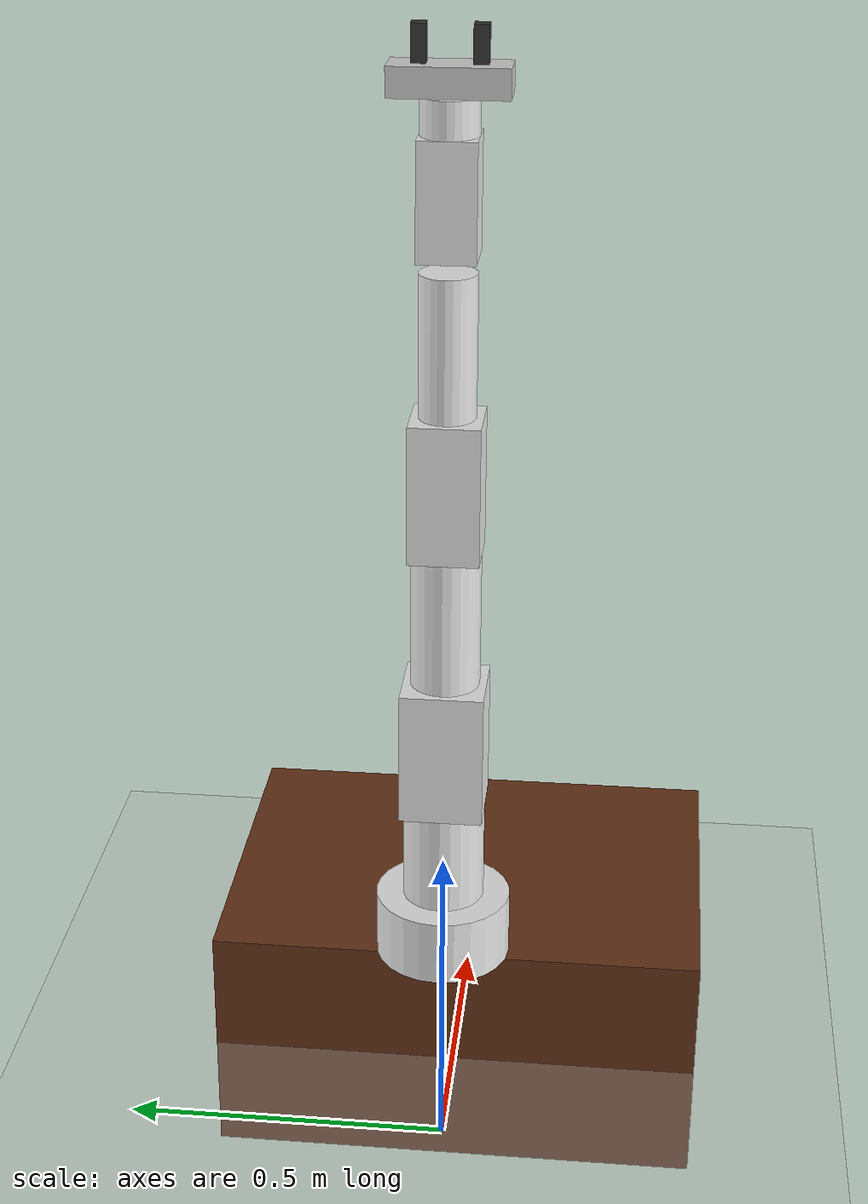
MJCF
<mujoco model="franka_panda_with_gripper">
    <compiler angle="radian" meshdir="assets"/>
    <option integrator="RK4" timestep="0.002"/>
    <worldbody>
        <!-- Environment Base Structure -->
        <light directional="true" diffuse="0.4 0.4 0.4" specular="0.1 0.1 0.1" pos="0 0 5" dir="0 0 -1"/>
        <geom name="floor" type="plane" size="10 10 0.1" rgba="0.8 0.8 0.8 1"/>
        <!-- Table Top for Future Grasping Objects -->
        <body name="table" pos="0.5 0 0">
            <geom type="box" size="0.3 0.4 0.2" rgba="0.4 0.2 0.1 1"/>
        </body>
        <!-- Franka Panda Base Link -->
        <body name="panda_link0" pos="0 0 0.4">
            <geom type="cylinder" size="0.1 0.05" rgba="0.9 0.9 0.9 1"/>
            <!-- Joint 1 -->
            <body name="panda_link1" pos="0 0 0.1">
                <joint name="panda_joint1" type="hinge" axis="0 0 1" range="-2.8973 2.8973"/>
                <geom type="cylinder" size="0.06 0.1" rgba="0.9 0.9 0.9 1"/>
                <!-- Joint 2 -->
                <body name="panda_link2" pos="0 0 0.2">
                    <joint name="panda_joint2" type="hinge" axis="0 1 0" range="-1.7628 1.7628"/>
                    <geom type="box" size="0.06 0.06 0.1" rgba="0.9 0.9 0.9 1"/>
                    <!-- Joint 3 -->
                    <body name="panda_link3" pos="0 0 0.2">
                        <joint name="panda_joint3" type="hinge" axis="0 0 1" range="-2.8973 2.8973"/>
                        <geom type="cylinder" size="0.05 0.1" rgba="0.9 0.9 0.9 1"/>
                        <!-- Joint 4 -->
                        <body name="panda_link4" pos="0 0 0.2">
                            <joint name="panda_joint4" type="hinge" axis="0 -1 0" range="-3.0718 -0.0698"/>
                            <geom type="box" size="0.05 0.05 0.1" rgba="0.9 0.9 0.9 1"/>
                            <!-- Joint 5 -->
                            <body name="panda_link5" pos="0 0 0.2">
                                <joint name="panda_joint5" type="hinge" axis="0 0 1" range="-2.8973 2.8973"/>
                                <geom type="cylinder" size="0.04 0.1" rgba="0.9 0.9 0.9 1"/>
                                <!-- Joint 6 -->
                                <body name="panda_link6" pos="0 0 0.2">
                                    <joint name="panda_joint6" type="hinge" axis="0 1 0" range="-0.0175 3.7525"/>
                                    <geom type="box" size="0.04 0.04 0.08" rgba="0.9 0.9 0.9 1"/>
                                    <!-- Joint 7 (Wrist) -->
                                    <body name="panda_link7" pos="0 0 0.1">
                                        <joint name="panda_joint7" type="hinge" axis="0 0 1" range="-2.8973 2.8973"/>
                                        <geom type="cylinder" size="0.04 0.03" rgba="0.9 0.9 0.9 1"/>
                                        <!-- GRIPPER MODULE -->
                                        <body name="panda_hand" pos="0 0 0.05">
                                            <!-- Main Hand Housing Assembly -->
                                            <geom type="box" size="0.03 0.08 0.02" rgba="0.8 0.8 0.8 1"/>
                                            <!-- Left Gripper Finger -->
                                            <body name="left_finger" pos="0 0.04 0.04">
                                                <joint name="finger_joint1" type="slide" axis="0 -1 0" range="0 0.04"/>
                                                <geom type="box" size="0.01 0.01 0.03" rgba="0.2 0.2 0.2 1"/>
                                            </body>
                                            <!-- Right Gripper Finger -->
                                            <body name="right_finger" pos="0 -0.04 0.04">
                                                <joint name="finger_joint2" type="slide" axis="0 1 0" range="0 0.04"/>
                                                <geom type="box" size="0.01 0.01 0.03" rgba="0.2 0.2 0.2 1"/>
                                            </body>
                                        </body>
                                    </body>
                                </body>
                            </body>
                        </body>
                    </body>
                </body>
            </body>
        </body>
    </worldbody>
</mujoco>
